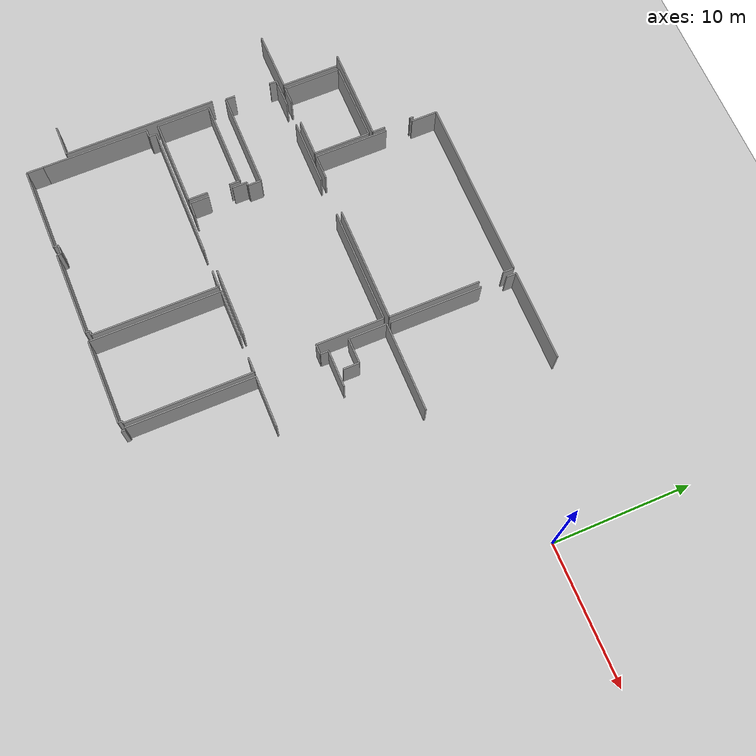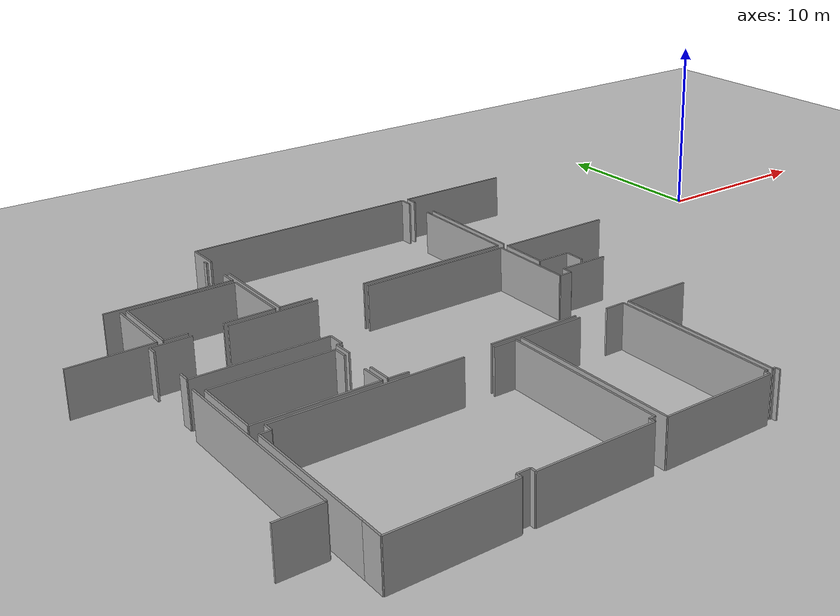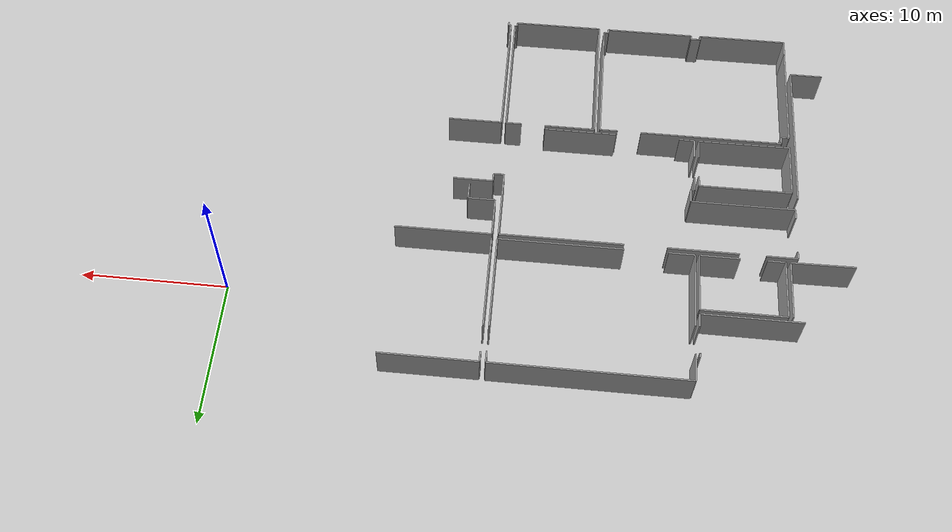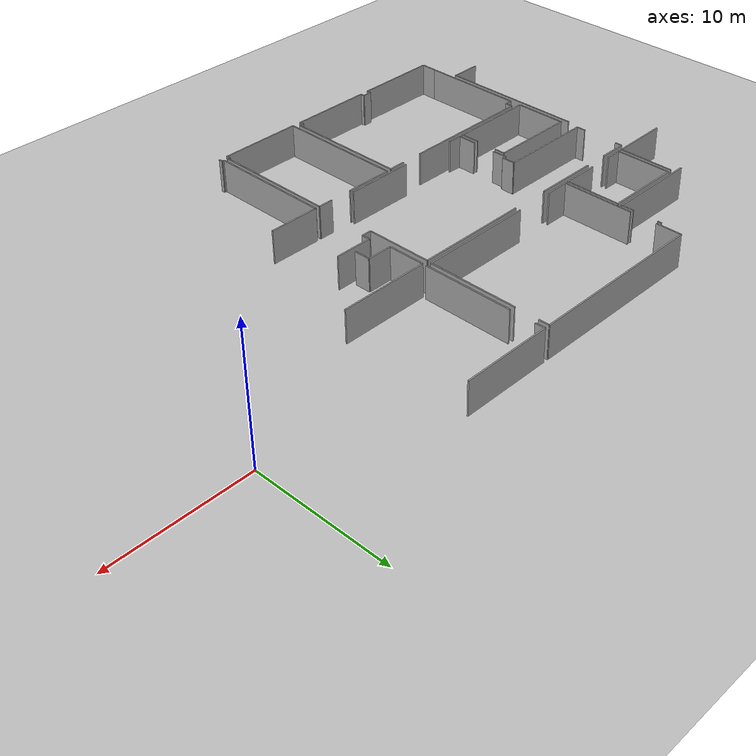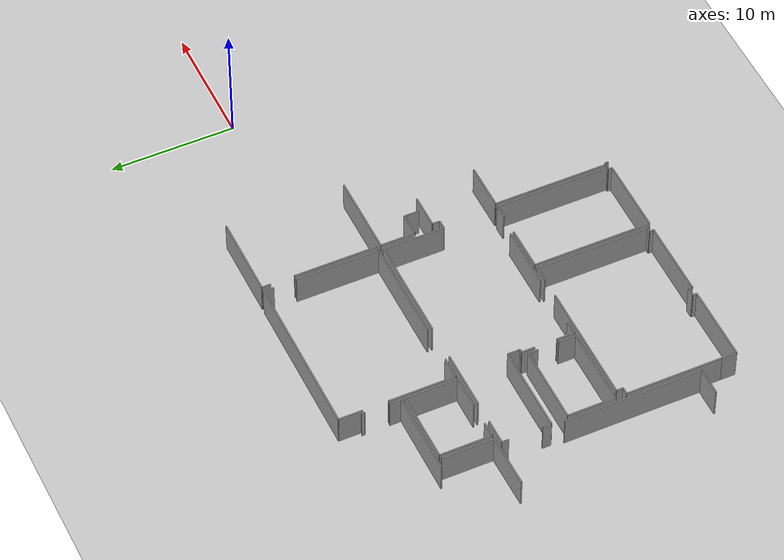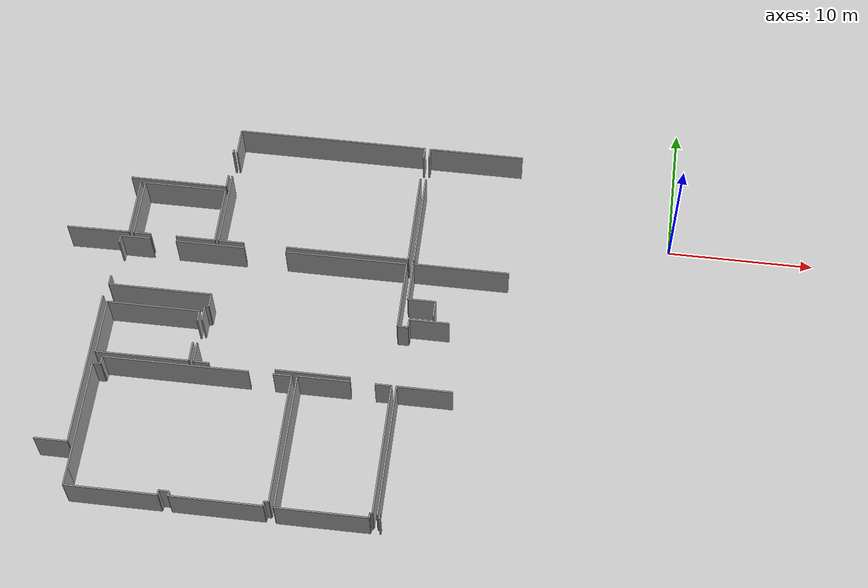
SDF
<sdf version="1.6">
 <world name="default">
  <model name="ground_plane">
   <static>1</static>
   <link name="link">
    <collision name="collision">
     <geometry><plane><normal>0 0 1</normal><size>100 100</size></plane></geometry>
     <surface><friction><ode><mu>100</mu><mu2>50</mu2></ode></friction></surface>
    </collision>
    <visual name="visual">
     <cast_shadows>0</cast_shadows>
     <geometry><plane><normal>0 0 1</normal><size>100 100</size></plane></geometry>
     <material>
      <script><uri>file://media/materials/scripts/gazebo.material</uri><name>Gazebo/Grey</name></script>
     </material>
    </visual>
   </link>
  </model>
  <model name="0510032194_A_40_1_202">
   <static>1</static>
   <link name="Wall_48">
    <collision name="Wall_48_Collision">
     <geometry><box><size>4.14655057443 0.1 2.5</size></box></geometry>
     <pose>2.07327528721 0 1.25 0 0 0</pose>
    </collision>
    <visual name="Wall_48_Visual">
     <pose>2.07327528721 0 1.25 0 0 0</pose>
     <geometry><box><size>4.14655057443 0.1 2.5</size></box></geometry>
     <material>
      <script><uri>file://media/materials/scripts/gazebo.material</uri><name>Gazebo/Grey</name></script>
      <ambient>1 1 1 1</ambient>
     </material>
    </visual>
    <pose>23.5691377547 -23.4225617772 0 0 0 -1.57079632679</pose>
   </link>
   <link name="Wall_49">
    <collision name="Wall_49_Collision">
     <geometry><box><size>4.31326619395 0.1 2.5</size></box></geometry>
     <pose>2.15663309697 0 1.25 0 0 0</pose>
    </collision>
    <visual name="Wall_49_Visual">
     <pose>2.15663309697 0 1.25 0 0 0</pose>
     <geometry><box><size>4.31326619395 0.1 2.5</size></box></geometry>
     <material>
      <script><uri>file://media/materials/scripts/gazebo.material</uri><name>Gazebo/Grey</name></script>
      <ambient>1 1 1 1</ambient>
     </material>
    </visual>
    <pose>23.5691377547 -27.5691123516 0 0 0 -3.12931267247</pose>
   </link>
   <link name="Wall_63">
    <collision name="Wall_63_Collision">
     <geometry><box><size>11.0179663536 0.1 2.5</size></box></geometry>
     <pose>5.50898317679 0 1.25 0 0 0</pose>
    </collision>
    <visual name="Wall_63_Visual">
     <pose>5.50898317679 0 1.25 0 0 0</pose>
     <geometry><box><size>11.0179663536 0.1 2.5</size></box></geometry>
     <material>
      <script><uri>file://media/materials/scripts/gazebo.material</uri><name>Gazebo/Grey</name></script>
      <ambient>1 1 1 1</ambient>
     </material>
    </visual>
    <pose>22.8526428766 -32.8129505084 0 0 0 -1.57079632679</pose>
   </link>
   <link name="Wall_64">
    <collision name="Wall_64_Collision">
     <geometry><box><size>2.25224023727 0.1 2.5</size></box></geometry>
     <pose>1.12612011863 0 1.25 0 0 0</pose>
    </collision>
    <visual name="Wall_64_Visual">
     <pose>1.12612011863 0 1.25 0 0 0</pose>
     <geometry><box><size>2.25224023727 0.1 2.5</size></box></geometry>
     <material>
      <script><uri>file://media/materials/scripts/gazebo.material</uri><name>Gazebo/Grey</name></script>
      <ambient>1 1 1 1</ambient>
     </material>
    </visual>
    <pose>22.8526428766 -43.830916862 0 0 0 3.14159265359</pose>
   </link>
   <link name="Wall_75">
    <collision name="Wall_75_Collision">
     <geometry><box><size>0.254031156921 0.1 2.5</size></box></geometry>
     <pose>0.127015578461 0 1.25 0 0 0</pose>
    </collision>
    <visual name="Wall_75_Visual">
     <pose>0.127015578461 0 1.25 0 0 0</pose>
     <geometry><box><size>0.254031156921 0.1 2.5</size></box></geometry>
     <material>
      <script><uri>file://media/materials/scripts/gazebo.material</uri><name>Gazebo/Grey</name></script>
      <ambient>1 1 1 1</ambient>
     </material>
    </visual>
    <pose>29.5842145039 -19.948177644 0 0 0 -1.57079632679</pose>
   </link>
   <link name="Wall_76">
    <collision name="Wall_76_Collision">
     <geometry><box><size>0.0396288604797 0.1 2.5</size></box></geometry>
     <pose>0.0198144302399 0 1.25 0 0 0</pose>
    </collision>
    <visual name="Wall_76_Visual">
     <pose>0.0198144302399 0 1.25 0 0 0</pose>
     <geometry><box><size>0.0396288604797 0.1 2.5</size></box></geometry>
     <material>
      <script><uri>file://media/materials/scripts/gazebo.material</uri><name>Gazebo/Grey</name></script>
      <ambient>1 1 1 1</ambient>
     </material>
    </visual>
    <pose>29.5842145039 -20.2022088009 0 0 0 -1.57079632679</pose>
   </link>
   <link name="Wall_77">
    <collision name="Wall_77_Collision">
     <geometry><box><size>0.939788265031 0.1 2.5</size></box></geometry>
     <pose>0.469894132515 0 1.25 0 0 0</pose>
    </collision>
    <visual name="Wall_77_Visual">
     <pose>0.469894132515 0 1.25 0 0 0</pose>
     <geometry><box><size>0.939788265031 0.1 2.5</size></box></geometry>
     <material>
      <script><uri>file://media/materials/scripts/gazebo.material</uri><name>Gazebo/Grey</name></script>
      <ambient>1 1 1 1</ambient>
     </material>
    </visual>
    <pose>29.5842145039 -22.160407974 0 0 0 -1.57079632679</pose>
   </link>
   <link name="Wall_78">
    <collision name="Wall_78_Collision">
     <geometry><box><size>6.74835518439 0.1 2.5</size></box></geometry>
     <pose>3.3741775922 0 1.25 0 0 0</pose>
    </collision>
    <visual name="Wall_78_Visual">
     <pose>3.3741775922 0 1.25 0 0 0</pose>
     <geometry><box><size>6.74835518439 0.1 2.5</size></box></geometry>
     <material>
      <script><uri>file://media/materials/scripts/gazebo.material</uri><name>Gazebo/Grey</name></script>
      <ambient>1 1 1 1</ambient>
     </material>
    </visual>
    <pose>29.5842145039 -23.1001962391 0 0 0 3.13931522482</pose>
   </link>
   <link name="Wall_79">
    <collision name="Wall_79_Collision">
     <geometry><box><size>5.37745854529 0.1 2.5</size></box></geometry>
     <pose>2.68872927265 0 1.25 0 0 0</pose>
    </collision>
    <visual name="Wall_79_Visual">
     <pose>2.68872927265 0 1.25 0 0 0</pose>
     <geometry><box><size>5.37745854529 0.1 2.5</size></box></geometry>
     <material>
      <script><uri>file://media/materials/scripts/gazebo.material</uri><name>Gazebo/Grey</name></script>
      <ambient>1 1 1 1</ambient>
     </material>
    </visual>
    <pose>29.8492960162 -27.5585700586 0 0 0 1.57079632679</pose>
   </link>
   <link name="Wall_80">
    <collision name="Wall_80_Collision">
     <geometry><box><size>1.90167724071 0.1 2.5</size></box></geometry>
     <pose>0.950838620357 0 1.25 0 0 0</pose>
    </collision>
    <visual name="Wall_80_Visual">
     <pose>0.950838620357 0 1.25 0 0 0</pose>
     <geometry><box><size>1.90167724071 0.1 2.5</size></box></geometry>
     <material>
      <script><uri>file://media/materials/scripts/gazebo.material</uri><name>Gazebo/Grey</name></script>
      <ambient>1 1 1 1</ambient>
     </material>
    </visual>
    <pose>29.8492960162 -20.1738843269 0 0 0 1.57079632679</pose>
   </link>
   <link name="Wall_81">
    <collision name="Wall_81_Collision">
     <geometry><box><size>13.1842170442 0.1 2.5</size></box></geometry>
     <pose>6.59210852211 0 1.25 0 0 0</pose>
    </collision>
    <visual name="Wall_81_Visual">
     <pose>6.59210852211 0 1.25 0 0 0</pose>
     <geometry><box><size>13.1842170442 0.1 2.5</size></box></geometry>
     <material>
      <script><uri>file://media/materials/scripts/gazebo.material</uri><name>Gazebo/Grey</name></script>
      <ambient>1 1 1 1</ambient>
     </material>
    </visual>
    <pose>29.8492960162 -18.2722070862 0 0 0 0.0</pose>
   </link>
   <link name="Wall_82">
    <collision name="Wall_82_Collision">
     <geometry><box><size>0.79791186389 0.1 2.5</size></box></geometry>
     <pose>0.398955931945 0 1.25 0 0 0</pose>
    </collision>
    <visual name="Wall_82_Visual">
     <pose>0.398955931945 0 1.25 0 0 0</pose>
     <geometry><box><size>0.79791186389 0.1 2.5</size></box></geometry>
     <material>
      <script><uri>file://media/materials/scripts/gazebo.material</uri><name>Gazebo/Grey</name></script>
      <ambient>1 1 1 1</ambient>
     </material>
    </visual>
    <pose>43.0335130604 -18.2722070862 0 0 0 -1.57079632679</pose>
   </link>
   <link name="Wall_83">
    <collision name="Wall_83_Collision">
     <geometry><box><size>6.69321292256 0.1 2.5</size></box></geometry>
     <pose>3.34660646128 0 1.25 0 0 0</pose>
    </collision>
    <visual name="Wall_83_Visual">
     <pose>3.34660646128 0 1.25 0 0 0</pose>
     <geometry><box><size>6.69321292256 0.1 2.5</size></box></geometry>
     <material>
      <script><uri>file://media/materials/scripts/gazebo.material</uri><name>Gazebo/Grey</name></script>
      <ambient>1 1 1 1</ambient>
     </material>
    </visual>
    <pose>43.0335130604 -20.8648490737 0 0 0 -1.57079632679</pose>
   </link>
   <link name="Wall_84">
    <collision name="Wall_84_Collision">
     <geometry><box><size>8.4756225351 0.1 2.5</size></box></geometry>
     <pose>4.23781126755 0 1.25 0 0 0</pose>
    </collision>
    <visual name="Wall_84_Visual">
     <pose>4.23781126755 0 1.25 0 0 0</pose>
     <geometry><box><size>8.4756225351 0.1 2.5</size></box></geometry>
     <material>
      <script><uri>file://media/materials/scripts/gazebo.material</uri><name>Gazebo/Grey</name></script>
      <ambient>1 1 1 1</ambient>
     </material>
    </visual>
    <pose>43.0335130604 -27.5580619963 0 0 0 3.14159265359</pose>
   </link>
   <link name="Wall_85">
    <collision name="Wall_85_Collision">
     <geometry><box><size>1.76564362928 0.1 2.5</size></box></geometry>
     <pose>0.88282181464 0 1.25 0 0 0</pose>
    </collision>
    <visual name="Wall_85_Visual">
     <pose>0.88282181464 0 1.25 0 0 0</pose>
     <geometry><box><size>1.76564362928 0.1 2.5</size></box></geometry>
     <material>
      <script><uri>file://media/materials/scripts/gazebo.material</uri><name>Gazebo/Grey</name></script>
      <ambient>1 1 1 1</ambient>
     </material>
    </visual>
    <pose>31.6149395723 -27.5580619963 0 0 0 -3.14130490451</pose>
   </link>
   <link name="Wall_86">
    <collision name="Wall_86_Collision">
     <geometry><box><size>3.87346708074 0.1 2.5</size></box></geometry>
     <pose>1.93673354037 0 1.25 0 0 0</pose>
    </collision>
    <visual name="Wall_86_Visual">
     <pose>1.93673354037 0 1.25 0 0 0</pose>
     <geometry><box><size>3.87346708074 0.1 2.5</size></box></geometry>
     <material>
      <script><uri>file://media/materials/scripts/gazebo.material</uri><name>Gazebo/Grey</name></script>
      <ambient>1 1 1 1</ambient>
     </material>
    </visual>
    <pose>23.2317843784 -37.097440001 0 0 0 1.57079632679</pose>
   </link>
   <link name="Wall_87">
    <collision name="Wall_87_Collision">
     <geometry><box><size>6.3303294149 0.1 2.5</size></box></geometry>
     <pose>3.16516470745 0 1.25 0 0 0</pose>
    </collision>
    <visual name="Wall_87_Visual">
     <pose>3.16516470745 0 1.25 0 0 0</pose>
     <geometry><box><size>6.3303294149 0.1 2.5</size></box></geometry>
     <material>
      <script><uri>file://media/materials/scripts/gazebo.material</uri><name>Gazebo/Grey</name></script>
      <ambient>1 1 1 1</ambient>
     </material>
    </visual>
    <pose>23.2317843784 -33.2239729203 0 0 0 0.0</pose>
   </link>
   <link name="Wall_88">
    <collision name="Wall_88_Collision">
     <geometry><box><size>0.795244536742 0.1 2.5</size></box></geometry>
     <pose>0.397622268371 0 1.25 0 0 0</pose>
    </collision>
    <visual name="Wall_88_Visual">
     <pose>0.397622268371 0 1.25 0 0 0</pose>
     <geometry><box><size>0.795244536742 0.1 2.5</size></box></geometry>
     <material>
      <script><uri>file://media/materials/scripts/gazebo.material</uri><name>Gazebo/Grey</name></script>
      <ambient>1 1 1 1</ambient>
     </material>
    </visual>
    <pose>29.5621137933 -33.2239729203 0 0 0 -1.57079632679</pose>
   </link>
   <link name="Wall_89">
    <collision name="Wall_89_Collision">
     <geometry><box><size>1.40822171839 0.1 2.5</size></box></geometry>
     <pose>0.704110859197 0 1.25 0 0 0</pose>
    </collision>
    <visual name="Wall_89_Visual">
     <pose>0.704110859197 0 1.25 0 0 0</pose>
     <geometry><box><size>1.40822171839 0.1 2.5</size></box></geometry>
     <material>
      <script><uri>file://media/materials/scripts/gazebo.material</uri><name>Gazebo/Grey</name></script>
      <ambient>1 1 1 1</ambient>
     </material>
    </visual>
    <pose>29.5621137933 -35.6593696217 0 0 0 -1.57079632679</pose>
   </link>
   <link name="Wall_90">
    <collision name="Wall_90_Collision">
     <geometry><box><size>6.33039978546 0.1 2.5</size></box></geometry>
     <pose>3.16519989273 0 1.25 0 0 0</pose>
    </collision>
    <visual name="Wall_90_Visual">
     <pose>3.16519989273 0 1.25 0 0 0</pose>
     <geometry><box><size>6.33039978546 0.1 2.5</size></box></geometry>
     <material>
      <script><uri>file://media/materials/scripts/gazebo.material</uri><name>Gazebo/Grey</name></script>
      <ambient>1 1 1 1</ambient>
     </material>
    </visual>
    <pose>29.5621137933 -37.0675913401 0 0 0 -3.13687750564</pose>
   </link>
   <link name="Wall_91">
    <collision name="Wall_91_Collision">
     <geometry><box><size>4.15900654968 0.1 2.5</size></box></geometry>
     <pose>2.07950327484 0 1.25 0 0 0</pose>
    </collision>
    <visual name="Wall_91_Visual">
     <pose>2.07950327484 0 1.25 0 0 0</pose>
     <geometry><box><size>4.15900654968 0.1 2.5</size></box></geometry>
     <material>
      <script><uri>file://media/materials/scripts/gazebo.material</uri><name>Gazebo/Grey</name></script>
      <ambient>1 1 1 1</ambient>
     </material>
    </visual>
    <pose>23.8949327135 -27.5682232426 0 0 0 1.57281196052</pose>
   </link>
   <link name="Wall_92">
    <collision name="Wall_92_Collision">
     <geometry><box><size>5.69868094322 0.1 2.5</size></box></geometry>
     <pose>2.84934047161 0 1.25 0 0 0</pose>
    </collision>
    <visual name="Wall_92_Visual">
     <pose>2.84934047161 0 1.25 0 0 0</pose>
     <geometry><box><size>5.69868094322 0.1 2.5</size></box></geometry>
     <material>
      <script><uri>file://media/materials/scripts/gazebo.material</uri><name>Gazebo/Grey</name></script>
      <ambient>1 1 1 1</ambient>
     </material>
    </visual>
    <pose>23.8865496853 -23.4092251415 0 0 0 0.0</pose>
   </link>
   <link name="Wall_93">
    <collision name="Wall_93_Collision">
     <geometry><box><size>4.1537904624 0.1 2.5</size></box></geometry>
     <pose>2.0768952312 0 1.25 0 0 0</pose>
    </collision>
    <visual name="Wall_93_Visual">
     <pose>2.0768952312 0 1.25 0 0 0</pose>
     <geometry><box><size>4.1537904624 0.1 2.5</size></box></geometry>
     <material>
      <script><uri>file://media/materials/scripts/gazebo.material</uri><name>Gazebo/Grey</name></script>
      <ambient>1 1 1 1</ambient>
     </material>
    </visual>
    <pose>29.5852306285 -23.4092251415 0 0 0 -1.57079632679</pose>
   </link>
   <link name="Wall_94">
    <collision name="Wall_94_Collision">
     <geometry><box><size>2.7178793479 0.1 2.5</size></box></geometry>
     <pose>1.35893967395 0 1.25 0 0 0</pose>
    </collision>
    <visual name="Wall_94_Visual">
     <pose>1.35893967395 0 1.25 0 0 0</pose>
     <geometry><box><size>2.7178793479 0.1 2.5</size></box></geometry>
     <material>
      <script><uri>file://media/materials/scripts/gazebo.material</uri><name>Gazebo/Grey</name></script>
      <ambient>1 1 1 1</ambient>
     </material>
    </visual>
    <pose>29.5852306285 -27.5630156039 0 0 0 3.14159265359</pose>
   </link>
   <link name="Wall_95">
    <collision name="Wall_95_Collision">
     <geometry><box><size>1.20513506013 0.1 2.5</size></box></geometry>
     <pose>0.602567530066 0 1.25 0 0 0</pose>
    </collision>
    <visual name="Wall_95_Visual">
     <pose>0.602567530066 0 1.25 0 0 0</pose>
     <geometry><box><size>1.20513506013 0.1 2.5</size></box></geometry>
     <material>
      <script><uri>file://media/materials/scripts/gazebo.material</uri><name>Gazebo/Grey</name></script>
      <ambient>1 1 1 1</ambient>
     </material>
    </visual>
    <pose>25.1000565219 -27.5630156039 0 0 0 -3.13727143259</pose>
   </link>
   <link name="Wall_96">
    <collision name="Wall_96_Collision">
     <geometry><box><size>7.7214040302 0.1 2.5</size></box></geometry>
     <pose>3.8607020151 0 1.25 0 0 0</pose>
    </collision>
    <visual name="Wall_96_Visual">
     <pose>3.8607020151 0 1.25 0 0 0</pose>
     <geometry><box><size>7.7214040302 0.1 2.5</size></box></geometry>
     <material>
      <script><uri>file://media/materials/scripts/gazebo.material</uri><name>Gazebo/Grey</name></script>
      <ambient>1 1 1 1</ambient>
     </material>
    </visual>
    <pose>23.2368650015 -45.6825499648 0 0 0 1.57079632679</pose>
   </link>
   <link name="Wall_97">
    <collision name="Wall_97_Collision">
     <geometry><box><size>0.553787922089 0.1 2.5</size></box></geometry>
     <pose>0.276893961044 0 1.25 0 0 0</pose>
    </collision>
    <visual name="Wall_97_Visual">
     <pose>0.276893961044 0 1.25 0 0 0</pose>
     <geometry><box><size>0.553787922089 0.1 2.5</size></box></geometry>
     <material>
      <script><uri>file://media/materials/scripts/gazebo.material</uri><name>Gazebo/Grey</name></script>
      <ambient>1 1 1 1</ambient>
     </material>
    </visual>
    <pose>23.2368650015 -37.9611459345 0 0 0 0.0</pose>
   </link>
   <link name="Wall_98">
    <collision name="Wall_98_Collision">
     <geometry><box><size>0.546166987381 0.1 2.5</size></box></geometry>
     <pose>0.273083493691 0 1.25 0 0 0</pose>
    </collision>
    <visual name="Wall_98_Visual">
     <pose>0.273083493691 0 1.25 0 0 0</pose>
     <geometry><box><size>0.546166987381 0.1 2.5</size></box></geometry>
     <material>
      <script><uri>file://media/materials/scripts/gazebo.material</uri><name>Gazebo/Grey</name></script>
      <ambient>1 1 1 1</ambient>
     </material>
    </visual>
    <pose>23.7906529236 -37.9611459345 0 0 0 1.57079632679</pose>
   </link>
   <link name="Wall_99">
    <collision name="Wall_99_Collision">
     <geometry><box><size>9.836086396 0.1 2.5</size></box></geometry>
     <pose>4.918043198 0 1.25 0 0 0</pose>
    </collision>
    <visual name="Wall_99_Visual">
     <pose>4.918043198 0 1.25 0 0 0</pose>
     <geometry><box><size>9.836086396 0.1 2.5</size></box></geometry>
     <material>
      <script><uri>file://media/materials/scripts/gazebo.material</uri><name>Gazebo/Grey</name></script>
      <ambient>1 1 1 1</ambient>
     </material>
    </visual>
    <pose>23.7906529236 -37.4149789472 0 0 0 0.0</pose>
   </link>
   <link name="Wall_100">
    <collision name="Wall_100_Collision">
     <geometry><box><size>1.24310146639 0.1 2.5</size></box></geometry>
     <pose>0.621550733197 0 1.25 0 0 0</pose>
    </collision>
    <visual name="Wall_100_Visual">
     <pose>0.621550733197 0 1.25 0 0 0</pose>
     <geometry><box><size>1.24310146639 0.1 2.5</size></box></geometry>
     <material>
      <script><uri>file://media/materials/scripts/gazebo.material</uri><name>Gazebo/Grey</name></script>
      <ambient>1 1 1 1</ambient>
     </material>
    </visual>
    <pose>35.2767986994 -37.4149789472 0 0 0 0.0</pose>
   </link>
   <link name="Wall_101">
    <collision name="Wall_101_Collision">
     <geometry><box><size>9.13686563657 0.1 2.5</size></box></geometry>
     <pose>4.56843281829 0 1.25 0 0 0</pose>
    </collision>
    <visual name="Wall_101_Visual">
     <pose>4.56843281829 0 1.25 0 0 0</pose>
     <geometry><box><size>9.13686563657 0.1 2.5</size></box></geometry>
     <material>
      <script><uri>file://media/materials/scripts/gazebo.material</uri><name>Gazebo/Grey</name></script>
      <ambient>1 1 1 1</ambient>
     </material>
    </visual>
    <pose>36.5199001658 -37.4149789472 0 0 0 -1.57079632679</pose>
   </link>
   <link name="Wall_102">
    <collision name="Wall_102_Collision">
     <geometry><box><size>0.309663980287 0.1 2.5</size></box></geometry>
     <pose>0.154831990144 0 1.25 0 0 0</pose>
    </collision>
    <visual name="Wall_102_Visual">
     <pose>0.154831990144 0 1.25 0 0 0</pose>
     <geometry><box><size>0.309663980287 0.1 2.5</size></box></geometry>
     <material>
      <script><uri>file://media/materials/scripts/gazebo.material</uri><name>Gazebo/Grey</name></script>
      <ambient>1 1 1 1</ambient>
     </material>
    </visual>
    <pose>36.5199001658 -46.5518445837 0 0 0 3.14159265359</pose>
   </link>
   <link name="Wall_103">
    <collision name="Wall_103_Collision">
     <geometry><box><size>0.321349413506 0.1 2.5</size></box></geometry>
     <pose>0.160674706753 0 1.25 0 0 0</pose>
    </collision>
    <visual name="Wall_103_Visual">
     <pose>0.160674706753 0 1.25 0 0 0</pose>
     <geometry><box><size>0.321349413506 0.1 2.5</size></box></geometry>
     <material>
      <script><uri>file://media/materials/scripts/gazebo.material</uri><name>Gazebo/Grey</name></script>
      <ambient>1 1 1 1</ambient>
     </material>
    </visual>
    <pose>36.2102361855 -46.5518445837 0 0 0 -1.57079632679</pose>
   </link>
   <link name="Wall_104">
    <collision name="Wall_104_Collision">
     <geometry><box><size>6.14945923117 0.1 2.5</size></box></geometry>
     <pose>3.07472961559 0 1.25 0 0 0</pose>
    </collision>
    <visual name="Wall_104_Visual">
     <pose>3.07472961559 0 1.25 0 0 0</pose>
     <geometry><box><size>6.14945923117 0.1 2.5</size></box></geometry>
     <material>
      <script><uri>file://media/materials/scripts/gazebo.material</uri><name>Gazebo/Grey</name></script>
      <ambient>1 1 1 1</ambient>
     </material>
    </visual>
    <pose>36.2102361855 -46.8731939972 0 0 0 3.14159265359</pose>
   </link>
   <link name="Wall_105">
    <collision name="Wall_105_Collision">
     <geometry><box><size>0.306742621983 0.1 2.5</size></box></geometry>
     <pose>0.153371310991 0 1.25 0 0 0</pose>
    </collision>
    <visual name="Wall_105_Visual">
     <pose>0.153371310991 0 1.25 0 0 0</pose>
     <geometry><box><size>0.306742621983 0.1 2.5</size></box></geometry>
     <material>
      <script><uri>file://media/materials/scripts/gazebo.material</uri><name>Gazebo/Grey</name></script>
      <ambient>1 1 1 1</ambient>
     </material>
    </visual>
    <pose>30.0607769543 -46.8731939972 0 0 0 1.57079632679</pose>
   </link>
   <link name="Wall_106">
    <collision name="Wall_106_Collision">
     <geometry><box><size>0.671912410057 0.1 2.5</size></box></geometry>
     <pose>0.335956205029 0 1.25 0 0 0</pose>
    </collision>
    <visual name="Wall_106_Visual">
     <pose>0.335956205029 0 1.25 0 0 0</pose>
     <geometry><box><size>0.671912410057 0.1 2.5</size></box></geometry>
     <material>
      <script><uri>file://media/materials/scripts/gazebo.material</uri><name>Gazebo/Grey</name></script>
      <ambient>1 1 1 1</ambient>
     </material>
    </visual>
    <pose>30.0607769543 -46.5664513753 0 0 0 3.14159265359</pose>
   </link>
   <link name="Wall_107">
    <collision name="Wall_107_Collision">
     <geometry><box><size>0.321349413506 0.1 2.5</size></box></geometry>
     <pose>0.160674706753 0 1.25 0 0 0</pose>
    </collision>
    <visual name="Wall_107_Visual">
     <pose>0.160674706753 0 1.25 0 0 0</pose>
     <geometry><box><size>0.321349413506 0.1 2.5</size></box></geometry>
     <material>
      <script><uri>file://media/materials/scripts/gazebo.material</uri><name>Gazebo/Grey</name></script>
      <ambient>1 1 1 1</ambient>
     </material>
    </visual>
    <pose>29.3888645442 -46.5664513753 0 0 0 -1.57079632679</pose>
   </link>
   <link name="Wall_108">
    <collision name="Wall_108_Collision">
     <geometry><box><size>6.1640660227 0.1 2.5</size></box></geometry>
     <pose>3.08203301135 0 1.25 0 0 0</pose>
    </collision>
    <visual name="Wall_108_Visual">
     <pose>3.08203301135 0 1.25 0 0 0</pose>
     <geometry><box><size>6.1640660227 0.1 2.5</size></box></geometry>
     <material>
      <script><uri>file://media/materials/scripts/gazebo.material</uri><name>Gazebo/Grey</name></script>
      <ambient>1 1 1 1</ambient>
     </material>
    </visual>
    <pose>29.3888645442 -46.8878007888 0 0 0 3.14159265359</pose>
   </link>
   <link name="Wall_109">
    <collision name="Wall_109_Collision">
     <geometry><box><size>1.20531122484 0.1 2.5</size></box></geometry>
     <pose>0.60265561242 0 1.25 0 0 0</pose>
    </collision>
    <visual name="Wall_109_Visual">
     <pose>0.60265561242 0 1.25 0 0 0</pose>
     <geometry><box><size>1.20531122484 0.1 2.5</size></box></geometry>
     <material>
      <script><uri>file://media/materials/scripts/gazebo.material</uri><name>Gazebo/Grey</name></script>
      <ambient>1 1 1 1</ambient>
     </material>
    </visual>
    <pose>23.2247985215 -46.8878007888 0 0 0 1.5607850689</pose>
   </link>
   <link name="Wall_110">
    <collision name="Wall_110_Collision">
     <geometry><box><size>9.51575310712 0.1 2.5</size></box></geometry>
     <pose>4.75787655356 0 1.25 0 0 0</pose>
    </collision>
    <visual name="Wall_110_Visual">
     <pose>4.75787655356 0 1.25 0 0 0</pose>
     <geometry><box><size>9.51575310712 0.1 2.5</size></box></geometry>
     <material>
      <script><uri>file://media/materials/scripts/gazebo.material</uri><name>Gazebo/Grey</name></script>
      <ambient>1 1 1 1</ambient>
     </material>
    </visual>
    <pose>36.8939610443 -46.8927543963 0 0 0 1.57079632679</pose>
   </link>
   <link name="Wall_111">
    <collision name="Wall_111_Collision">
     <geometry><box><size>3.5352245953 0.1 2.5</size></box></geometry>
     <pose>1.76761229765 0 1.25 0 0 0</pose>
    </collision>
    <visual name="Wall_111_Visual">
     <pose>1.76761229765 0 1.25 0 0 0</pose>
     <geometry><box><size>3.5352245953 0.1 2.5</size></box></geometry>
     <material>
      <script><uri>file://media/materials/scripts/gazebo.material</uri><name>Gazebo/Grey</name></script>
      <ambient>1 1 1 1</ambient>
     </material>
    </visual>
    <pose>36.8939610443 -37.3770012892 0 0 0 0.0</pose>
   </link>
   <link name="Wall_112">
    <collision name="Wall_112_Collision">
     <geometry><box><size>1.10452747029 0.1 2.5</size></box></geometry>
     <pose>0.552263735147 0 1.25 0 0 0</pose>
    </collision>
    <visual name="Wall_112_Visual">
     <pose>0.552263735147 0 1.25 0 0 0</pose>
     <geometry><box><size>1.10452747029 0.1 2.5</size></box></geometry>
     <material>
      <script><uri>file://media/materials/scripts/gazebo.material</uri><name>Gazebo/Grey</name></script>
      <ambient>1 1 1 1</ambient>
     </material>
    </visual>
    <pose>42.0808962219 -37.3770012892 0 0 0 0.0</pose>
   </link>
   <link name="Wall_113">
    <collision name="Wall_113_Collision">
     <geometry><box><size>9.21129676555 0.1 2.5</size></box></geometry>
     <pose>4.60564838277 0 1.25 0 0 0</pose>
    </collision>
    <visual name="Wall_113_Visual">
     <pose>4.60564838277 0 1.25 0 0 0</pose>
     <geometry><box><size>9.21129676555 0.1 2.5</size></box></geometry>
     <material>
      <script><uri>file://media/materials/scripts/gazebo.material</uri><name>Gazebo/Grey</name></script>
      <ambient>1 1 1 1</ambient>
     </material>
    </visual>
    <pose>43.1854236922 -37.3770012892 0 0 0 -1.57079632679</pose>
   </link>
   <link name="Wall_114">
    <collision name="Wall_114_Collision">
     <geometry><box><size>0.159658582125 0.1 2.5</size></box></geometry>
     <pose>0.0798292910625 0 1.25 0 0 0</pose>
    </collision>
    <visual name="Wall_114_Visual">
     <pose>0.0798292910625 0 1.25 0 0 0</pose>
     <geometry><box><size>0.159658582125 0.1 2.5</size></box></geometry>
     <material>
      <script><uri>file://media/materials/scripts/gazebo.material</uri><name>Gazebo/Grey</name></script>
      <ambient>1 1 1 1</ambient>
     </material>
    </visual>
    <pose>43.1854236922 -46.5882980548 0 0 0 3.14159265359</pose>
   </link>
   <link name="Wall_115">
    <collision name="Wall_115_Collision">
     <geometry><box><size>0.298232578226 0.1 2.5</size></box></geometry>
     <pose>0.149116289113 0 1.25 0 0 0</pose>
    </collision>
    <visual name="Wall_115_Visual">
     <pose>0.149116289113 0 1.25 0 0 0</pose>
     <geometry><box><size>0.298232578226 0.1 2.5</size></box></geometry>
     <material>
      <script><uri>file://media/materials/scripts/gazebo.material</uri><name>Gazebo/Grey</name></script>
      <ambient>1 1 1 1</ambient>
     </material>
    </visual>
    <pose>43.0257651101 -46.5882980548 0 0 0 -1.57079632679</pose>
   </link>
   <link name="Wall_116">
    <collision name="Wall_116_Collision">
     <geometry><box><size>6.13180722432 0.1 2.5</size></box></geometry>
     <pose>3.06590361216 0 1.25 0 0 0</pose>
    </collision>
    <visual name="Wall_116_Visual">
     <pose>3.06590361216 0 1.25 0 0 0</pose>
     <geometry><box><size>6.13180722432 0.1 2.5</size></box></geometry>
     <material>
      <script><uri>file://media/materials/scripts/gazebo.material</uri><name>Gazebo/Grey</name></script>
      <ambient>1 1 1 1</ambient>
     </material>
    </visual>
    <pose>43.0257651101 -46.886530633 0 0 0 -3.14057765684</pose>
   </link>
   <link name="Wall_126">
    <collision name="Wall_126_Collision">
     <geometry><box><size>0.278418147986 0.1 2.5</size></box></geometry>
     <pose>0.139209073993 0 1.25 0 0 0</pose>
    </collision>
    <visual name="Wall_126_Visual">
     <pose>0.139209073993 0 1.25 0 0 0</pose>
     <geometry><box><size>0.278418147986 0.1 2.5</size></box></geometry>
     <material>
      <script><uri>file://media/materials/scripts/gazebo.material</uri><name>Gazebo/Grey</name></script>
      <ambient>1 1 1 1</ambient>
     </material>
    </visual>
    <pose>43.6745606849 -46.9022805647 0 0 0 1.57079632679</pose>
   </link>
   <link name="Wall_127">
    <collision name="Wall_127_Collision">
     <geometry><box><size>0.1633420339 0.1 2.5</size></box></geometry>
     <pose>0.0816710169502 0 1.25 0 0 0</pose>
    </collision>
    <visual name="Wall_127_Visual">
     <pose>0.0816710169502 0 1.25 0 0 0</pose>
     <geometry><box><size>0.1633420339 0.1 2.5</size></box></geometry>
     <material>
      <script><uri>file://media/materials/scripts/gazebo.material</uri><name>Gazebo/Grey</name></script>
      <ambient>1 1 1 1</ambient>
     </material>
    </visual>
    <pose>43.6745606849 -46.6238624167 0 0 0 3.14159265359</pose>
   </link>
   <link name="Wall_128">
    <collision name="Wall_128_Collision">
     <geometry><box><size>9.23936720839 0.1 2.5</size></box></geometry>
     <pose>4.61968360419 0 1.25 0 0 0</pose>
    </collision>
    <visual name="Wall_128_Visual">
     <pose>4.61968360419 0 1.25 0 0 0</pose>
     <geometry><box><size>9.23936720839 0.1 2.5</size></box></geometry>
     <material>
      <script><uri>file://media/materials/scripts/gazebo.material</uri><name>Gazebo/Grey</name></script>
      <ambient>1 1 1 1</ambient>
     </material>
    </visual>
    <pose>43.511218651 -46.6238624167 0 0 0 1.57079632679</pose>
   </link>
   <link name="Wall_129">
    <collision name="Wall_129_Collision">
     <geometry><box><size>3.74568940881 0.1 2.5</size></box></geometry>
     <pose>1.8728447044 0 1.25 0 0 0</pose>
    </collision>
    <visual name="Wall_129_Visual">
     <pose>1.8728447044 0 1.25 0 0 0</pose>
     <geometry><box><size>3.74568940881 0.1 2.5</size></box></geometry>
     <material>
      <script><uri>file://media/materials/scripts/gazebo.material</uri><name>Gazebo/Grey</name></script>
      <ambient>1 1 1 1</ambient>
     </material>
    </visual>
    <pose>43.511218651 -37.3844952083 0 0 0 0.0</pose>
   </link>
   <link name="Wall_225">
    <collision name="Wall_225_Collision">
     <geometry><box><size>6.70350118442 0.1 2.5</size></box></geometry>
     <pose>3.35175059221 0 1.25 0 0 0</pose>
    </collision>
    <visual name="Wall_225_Visual">
     <pose>3.35175059221 0 1.25 0 0 0</pose>
     <geometry><box><size>6.70350118442 0.1 2.5</size></box></geometry>
     <material>
      <script><uri>file://media/materials/scripts/gazebo.material</uri><name>Gazebo/Grey</name></script>
      <ambient>1 1 1 1</ambient>
     </material>
    </visual>
    <pose>43.4234508863 -27.5912130623 0 0 0 1.57079632679</pose>
   </link>
   <link name="Wall_226">
    <collision name="Wall_226_Collision">
     <geometry><box><size>0.715224722312 0.1 2.5</size></box></geometry>
     <pose>0.357612361156 0 1.25 0 0 0</pose>
    </collision>
    <visual name="Wall_226_Visual">
     <pose>0.357612361156 0 1.25 0 0 0</pose>
     <geometry><box><size>0.715224722312 0.1 2.5</size></box></geometry>
     <material>
      <script><uri>file://media/materials/scripts/gazebo.material</uri><name>Gazebo/Grey</name></script>
      <ambient>1 1 1 1</ambient>
     </material>
    </visual>
    <pose>43.4234508863 -18.9970849925 0 0 0 1.57079632679</pose>
   </link>
   <link name="Wall_227">
    <collision name="Wall_227_Collision">
     <geometry><box><size>6.5827093693 0.1 2.5</size></box></geometry>
     <pose>3.29135468465 0 1.25 0 0 0</pose>
    </collision>
    <visual name="Wall_227_Visual">
     <pose>3.29135468465 0 1.25 0 0 0</pose>
     <geometry><box><size>6.5827093693 0.1 2.5</size></box></geometry>
     <material>
      <script><uri>file://media/materials/scripts/gazebo.material</uri><name>Gazebo/Grey</name></script>
      <ambient>1 1 1 1</ambient>
     </material>
    </visual>
    <pose>43.4234508863 -18.2818602702 0 0 0 0.0</pose>
   </link>
   <link name="Wall_230">
    <collision name="Wall_230_Collision">
     <geometry><box><size>1.18315011336 0.1 2.5</size></box></geometry>
     <pose>0.591575056681 0 1.25 0 0 0</pose>
    </collision>
    <visual name="Wall_230_Visual">
     <pose>0.591575056681 0 1.25 0 0 0</pose>
     <geometry><box><size>1.18315011336 0.1 2.5</size></box></geometry>
     <material>
      <script><uri>file://media/materials/scripts/gazebo.material</uri><name>Gazebo/Grey</name></script>
      <ambient>1 1 1 1</ambient>
     </material>
    </visual>
    <pose>45.2810537212 -31.8574123116 0 0 0 1.57079632679</pose>
   </link>
   <link name="Wall_231">
    <collision name="Wall_231_Collision">
     <geometry><box><size>1.85506252342 0.1 2.5</size></box></geometry>
     <pose>0.927531261709 0 1.25 0 0 0</pose>
    </collision>
    <visual name="Wall_231_Visual">
     <pose>0.927531261709 0 1.25 0 0 0</pose>
     <geometry><box><size>1.85506252342 0.1 2.5</size></box></geometry>
     <material>
      <script><uri>file://media/materials/scripts/gazebo.material</uri><name>Gazebo/Grey</name></script>
      <ambient>1 1 1 1</ambient>
     </material>
    </visual>
    <pose>45.2810537212 -30.6742621983 0 0 0 3.14159265359</pose>
   </link>
   <link name="Wall_232">
    <collision name="Wall_232_Collision">
     <geometry><box><size>2.78494357333 0.1 2.5</size></box></geometry>
     <pose>1.39247178666 0 1.25 0 0 0</pose>
    </collision>
    <visual name="Wall_232_Visual">
     <pose>1.39247178666 0 1.25 0 0 0</pose>
     <geometry><box><size>2.78494357333 0.1 2.5</size></box></geometry>
     <material>
      <script><uri>file://media/materials/scripts/gazebo.material</uri><name>Gazebo/Grey</name></script>
      <ambient>1 1 1 1</ambient>
     </material>
    </visual>
    <pose>43.4259911978 -30.6742621983 0 0 0 1.57079632679</pose>
   </link>
   <link name="Wall_233">
    <collision name="Wall_233_Collision">
     <geometry><box><size>6.57775576174 0.1 2.5</size></box></geometry>
     <pose>3.28887788087 0 1.25 0 0 0</pose>
    </collision>
    <visual name="Wall_233_Visual">
     <pose>3.28887788087 0 1.25 0 0 0</pose>
     <geometry><box><size>6.57775576174 0.1 2.5</size></box></geometry>
     <material>
      <script><uri>file://media/materials/scripts/gazebo.material</uri><name>Gazebo/Grey</name></script>
      <ambient>1 1 1 1</ambient>
     </material>
    </visual>
    <pose>43.4259911978 -27.8893186249 0 0 0 0.0</pose>
   </link>
   <link name="Wall_337">
    <collision name="Wall_337_Collision">
     <geometry><box><size>1.39717136307 0.1 2.5</size></box></geometry>
     <pose>0.698585681534 0 1.25 0 0 0</pose>
    </collision>
    <visual name="Wall_337_Visual">
     <pose>0.698585681534 0 1.25 0 0 0</pose>
     <geometry><box><size>1.39717136307 0.1 2.5</size></box></geometry>
     <material>
      <script><uri>file://media/materials/scripts/gazebo.material</uri><name>Gazebo/Grey</name></script>
      <ambient>1 1 1 1</ambient>
     </material>
    </visual>
    <pose>29.861997574 -37.0720368853 0 0 0 1.57079632679</pose>
   </link>
   <link name="Wall_338">
    <collision name="Wall_338_Collision">
     <geometry><box><size>1.07836226113 0.1 2.5</size></box></geometry>
     <pose>0.539181130566 0 1.25 0 0 0</pose>
    </collision>
    <visual name="Wall_338_Visual">
     <pose>0.539181130566 0 1.25 0 0 0</pose>
     <geometry><box><size>1.07836226113 0.1 2.5</size></box></geometry>
     <material>
      <script><uri>file://media/materials/scripts/gazebo.material</uri><name>Gazebo/Grey</name></script>
      <ambient>1 1 1 1</ambient>
     </material>
    </visual>
    <pose>29.861997574 -33.9093489817 0 0 0 1.57079632679</pose>
   </link>
   <link name="Wall_339">
    <collision name="Wall_339_Collision">
     <geometry><box><size>0.257968639854 0.1 2.5</size></box></geometry>
     <pose>0.128984319927 0 1.25 0 0 0</pose>
    </collision>
    <visual name="Wall_339_Visual">
     <pose>0.128984319927 0 1.25 0 0 0</pose>
     <geometry><box><size>0.257968639854 0.1 2.5</size></box></geometry>
     <material>
      <script><uri>file://media/materials/scripts/gazebo.material</uri><name>Gazebo/Grey</name></script>
      <ambient>1 1 1 1</ambient>
     </material>
    </visual>
    <pose>29.861997574 -32.8309867205 0 0 0 0.0</pose>
   </link>
   <link name="Wall_340">
    <collision name="Wall_340_Collision">
     <geometry><box><size>0.974336502372 0.1 2.5</size></box></geometry>
     <pose>0.487168251186 0 1.25 0 0 0</pose>
    </collision>
    <visual name="Wall_340_Visual">
     <pose>0.487168251186 0 1.25 0 0 0</pose>
     <geometry><box><size>0.974336502372 0.1 2.5</size></box></geometry>
     <material>
      <script><uri>file://media/materials/scripts/gazebo.material</uri><name>Gazebo/Grey</name></script>
      <ambient>1 1 1 1</ambient>
     </material>
    </visual>
    <pose>30.1199662139 -32.8309867205 0 0 0 1.57079632679</pose>
   </link>
   <link name="Wall_341">
    <collision name="Wall_341_Collision">
     <geometry><box><size>7.05584239907 0.1 2.5</size></box></geometry>
     <pose>3.52792119954 0 1.25 0 0 0</pose>
    </collision>
    <visual name="Wall_341_Visual">
     <pose>3.52792119954 0 1.25 0 0 0</pose>
     <geometry><box><size>7.05584239907 0.1 2.5</size></box></geometry>
     <material>
      <script><uri>file://media/materials/scripts/gazebo.material</uri><name>Gazebo/Grey</name></script>
      <ambient>1 1 1 1</ambient>
     </material>
    </visual>
    <pose>30.1199662139 -31.8566502181 0 0 0 3.14159265359</pose>
   </link>
   <link name="Wall_342">
    <collision name="Wall_342_Collision">
     <geometry><box><size>0.685757108109 0.1 2.5</size></box></geometry>
     <pose>0.342878554055 0 1.25 0 0 0</pose>
    </collision>
    <visual name="Wall_342_Visual">
     <pose>0.342878554055 0 1.25 0 0 0</pose>
     <geometry><box><size>0.685757108109 0.1 2.5</size></box></geometry>
     <material>
      <script><uri>file://media/materials/scripts/gazebo.material</uri><name>Gazebo/Grey</name></script>
      <ambient>1 1 1 1</ambient>
     </material>
    </visual>
    <pose>23.0641238148 -31.8566502181 0 0 0 1.57079632679</pose>
   </link>
   <link name="Wall_343">
    <collision name="Wall_343_Collision">
     <geometry><box><size>0.547437143166 0.1 2.5</size></box></geometry>
     <pose>0.273718571583 0 1.25 0 0 0</pose>
    </collision>
    <visual name="Wall_343_Visual">
     <pose>0.273718571583 0 1.25 0 0 0</pose>
     <geometry><box><size>0.547437143166 0.1 2.5</size></box></geometry>
     <material>
      <script><uri>file://media/materials/scripts/gazebo.material</uri><name>Gazebo/Grey</name></script>
      <ambient>1 1 1 1</ambient>
     </material>
    </visual>
    <pose>23.0641238148 -28.4718120678 0 0 0 1.57079632679</pose>
   </link>
   <link name="Wall_344">
    <collision name="Wall_344_Collision">
     <geometry><box><size>2.0839445958 0.1 2.5</size></box></geometry>
     <pose>1.0419722979 0 1.25 0 0 0</pose>
    </collision>
    <visual name="Wall_344_Visual">
     <pose>1.0419722979 0 1.25 0 0 0</pose>
     <geometry><box><size>2.0839445958 0.1 2.5</size></box></geometry>
     <material>
      <script><uri>file://media/materials/scripts/gazebo.material</uri><name>Gazebo/Grey</name></script>
      <ambient>1 1 1 1</ambient>
     </material>
    </visual>
    <pose>23.0641238148 -27.9243749246 0 0 0 0.0</pose>
   </link>
   <link name="Wall_345">
    <collision name="Wall_345_Collision">
     <geometry><box><size>4.78112040442 0.1 2.5</size></box></geometry>
     <pose>2.39056020221 0 1.25 0 0 0</pose>
    </collision>
    <visual name="Wall_345_Visual">
     <pose>2.39056020221 0 1.25 0 0 0</pose>
     <geometry><box><size>4.78112040442 0.1 2.5</size></box></geometry>
     <material>
      <script><uri>file://media/materials/scripts/gazebo.material</uri><name>Gazebo/Grey</name></script>
      <ambient>1 1 1 1</ambient>
     </material>
    </visual>
    <pose>26.9224760417 -27.9243749246 0 0 0 0.0</pose>
   </link>
   <link name="Wall_346">
    <collision name="Wall_346_Collision">
     <geometry><box><size>8.40627202926 0.1 2.5</size></box></geometry>
     <pose>4.20313601463 0 1.25 0 0 0</pose>
    </collision>
    <visual name="Wall_346_Visual">
     <pose>4.20313601463 0 1.25 0 0 0</pose>
     <geometry><box><size>8.40627202926 0.1 2.5</size></box></geometry>
     <material>
      <script><uri>file://media/materials/scripts/gazebo.material</uri><name>Gazebo/Grey</name></script>
      <ambient>1 1 1 1</ambient>
     </material>
    </visual>
    <pose>34.5764347997 -27.9243749246 0 0 0 0.0</pose>
   </link>
   <link name="Wall_347">
    <collision name="Wall_347_Collision">
     <geometry><box><size>4.9262992106 0.1 2.5</size></box></geometry>
     <pose>2.4631496053 0 1.25 0 0 0</pose>
    </collision>
    <visual name="Wall_347_Visual">
     <pose>2.4631496053 0 1.25 0 0 0</pose>
     <geometry><box><size>4.9262992106 0.1 2.5</size></box></geometry>
     <material>
      <script><uri>file://media/materials/scripts/gazebo.material</uri><name>Gazebo/Grey</name></script>
      <ambient>1 1 1 1</ambient>
     </material>
    </visual>
    <pose>42.982706829 -27.9243749246 0 0 0 -1.57079632679</pose>
   </link>
   <link name="Wall_348">
    <collision name="Wall_348_Collision">
     <geometry><box><size>0.720813407764 0.1 2.5</size></box></geometry>
     <pose>0.360406703882 0 1.25 0 0 0</pose>
    </collision>
    <visual name="Wall_348_Visual">
     <pose>0.360406703882 0 1.25 0 0 0</pose>
     <geometry><box><size>0.720813407764 0.1 2.5</size></box></geometry>
     <material>
      <script><uri>file://media/materials/scripts/gazebo.material</uri><name>Gazebo/Grey</name></script>
      <ambient>1 1 1 1</ambient>
     </material>
    </visual>
    <pose>42.982706829 -32.8506741352 0 0 0 0.0</pose>
   </link>
   <link name="Wall_349">
    <collision name="Wall_349_Collision">
     <geometry><box><size>0.598878452442 0.1 2.5</size></box></geometry>
     <pose>0.299439226221 0 1.25 0 0 0</pose>
    </collision>
    <visual name="Wall_349_Visual">
     <pose>0.299439226221 0 1.25 0 0 0</pose>
     <geometry><box><size>0.598878452442 0.1 2.5</size></box></geometry>
     <material>
      <script><uri>file://media/materials/scripts/gazebo.material</uri><name>Gazebo/Grey</name></script>
      <ambient>1 1 1 1</ambient>
     </material>
    </visual>
    <pose>43.7035202368 -32.8506741352 0 0 0 1.57079632679</pose>
   </link>
   <link name="Wall_350">
    <collision name="Wall_350_Collision">
     <geometry><box><size>2.73528048215 0.1 2.5</size></box></geometry>
     <pose>1.36764024108 0 1.25 0 0 0</pose>
    </collision>
    <visual name="Wall_350_Visual">
     <pose>1.36764024108 0 1.25 0 0 0</pose>
     <geometry><box><size>2.73528048215 0.1 2.5</size></box></geometry>
     <material>
      <script><uri>file://media/materials/scripts/gazebo.material</uri><name>Gazebo/Grey</name></script>
      <ambient>1 1 1 1</ambient>
     </material>
    </visual>
    <pose>43.7035202368 -32.2517956827 0 0 0 0.0</pose>
   </link>
   <link name="Wall_432">
    <collision name="Wall_432_Collision">
     <geometry><box><size>5.02727659547 0.1 2.5</size></box></geometry>
     <pose>2.51363829774 0 1.25 0 0 0</pose>
    </collision>
    <visual name="Wall_432_Visual">
     <pose>2.51363829774 0 1.25 0 0 0</pose>
     <geometry><box><size>5.02727659547 0.1 2.5</size></box></geometry>
     <material>
      <script><uri>file://media/materials/scripts/gazebo.material</uri><name>Gazebo/Grey</name></script>
      <ambient>1 1 1 1</ambient>
     </material>
    </visual>
    <pose>40.3913349972 -37.0964238764 0 0 0 3.14159265359</pose>
   </link>
   <link name="Wall_433">
    <collision name="Wall_433_Collision">
     <geometry><box><size>1.05781285447 0.1 2.5</size></box></geometry>
     <pose>0.528906427236 0 1.25 0 0 0</pose>
    </collision>
    <visual name="Wall_433_Visual">
     <pose>0.528906427236 0 1.25 0 0 0</pose>
     <geometry><box><size>1.05781285447 0.1 2.5</size></box></geometry>
     <material>
      <script><uri>file://media/materials/scripts/gazebo.material</uri><name>Gazebo/Grey</name></script>
      <ambient>1 1 1 1</ambient>
     </material>
    </visual>
    <pose>30.9195292803 -37.0964238764 0 0 0 3.11853644687</pose>
   </link>
   <pose>-60.9 23.465744216 0 0 0 0</pose>
  </model>
 </world>
</sdf>
